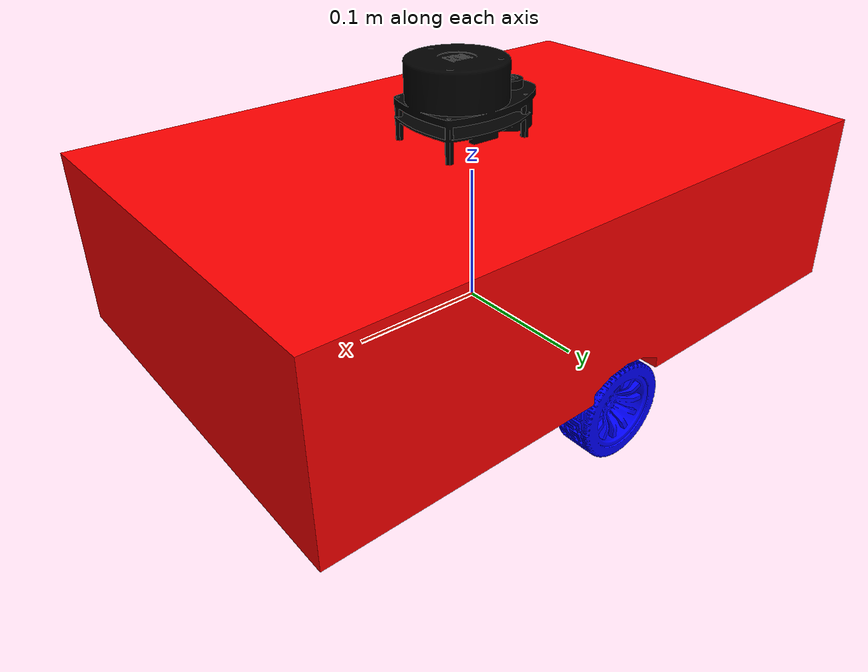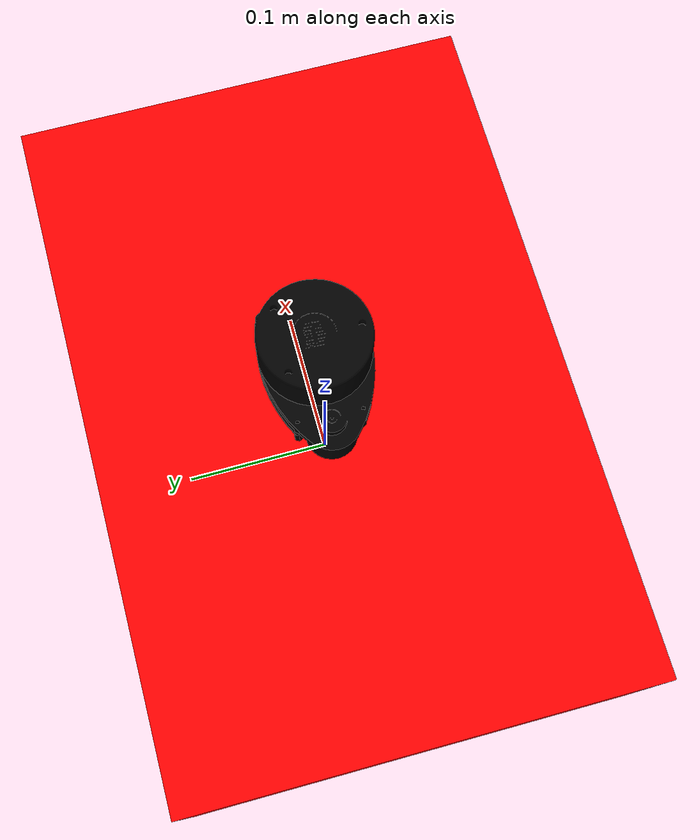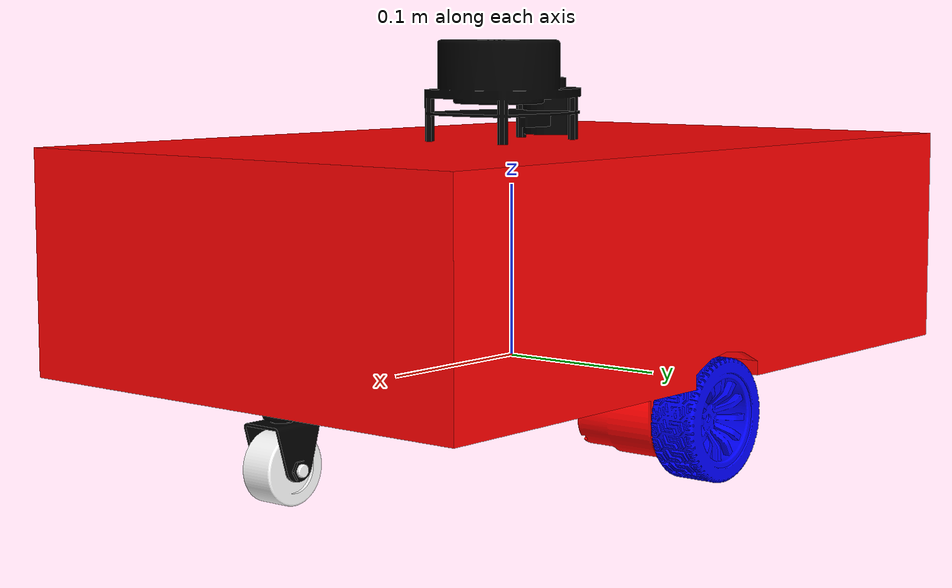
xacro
<?xml version="1.0" encoding="utf-8"?>
<robot xmlns:xacro="http://www.ros.org/wiki/xacro" >
	<material name="red">
        	<color rgba="1.0 0.0 0.0 1.0"/>
   	 </material>
   	 <material name="black">
        	<color rgba="0.0 0.0 0.0 1.0"/>
         </material>
         <material name="blue">
         	<color rgba="0.0 0.0 1.0 1.0"/>
        </material>
        <material name="white">
         	<color rgba="1.0 1.0 1.0 1.0"/>
        </material>
  <link
    name="base_link">
  </link>
  <link
    name="left_wheel">
    <inertial>
      <origin
        xyz="-8.83488102121355E-10 5.46856449012978E-11 -0.00153990809638952"
        rpy="0 0 0" />
      <mass
        value="0.0351743518689195" />
      <inertia
        ixx="1.52365643010477E-05"
        ixy="3.0840857389948E-10"
        ixz="-9.97409077694242E-14"
        iyy="1.5237343017232E-05"
        iyz="-6.11272444343794E-14"
        izz="2.57855724460667E-05" />
    </inertial>
    <visual>
      <origin
        xyz="0 0 0"
        rpy="0 0 0" />
      <geometry>
        <mesh
          filename="package://iron_mobot/meshes/left_wheel.STL" />
      </geometry>
      <material name="blue" />
    </visual>
    <collision>
      <origin
        xyz="0 0 0"
        rpy="0 0 0" />
      <geometry>
        <mesh
          filename="package://iron_mobot/meshes/left_wheel.STL" />
      </geometry>
    </collision>
  </link>
  <joint
    name="left_wheel_joint"
    type="continuous">
    <origin
      xyz="0 0.138 -0.0210000000000002"
      rpy="-1.5707963267949 0 0" />
    <parent
      link="base_link" />
    <child
      link="left_wheel" />
    <axis
      xyz="0 0 1" />
  </joint>
  <link
    name="right_wheel">
    <inertial>
      <origin
        xyz="7.70630951413276E-10 -3.32503330424672E-10 -0.00153990805361556"
        rpy="0 0 0" />
      <mass
        value="0.0351743514548104" />
      <inertia
        ixx="1.52365640491052E-05"
        ixy="3.08509166722093E-10"
        ixz="8.38334222583704E-14"
        iyy="1.52373429696304E-05"
        iyz="2.27587680472107E-14"
        izz="2.57855721584521E-05" />
    </inertial>
    <visual>
      <origin
        xyz="0 0 0"
        rpy="0 0 0" />
      <geometry>
        <mesh
          filename="package://iron_mobot/meshes/right_wheel.STL" />
      </geometry>
      <material name="blue" />
    </visual>
    <collision>
      <origin
        xyz="0 0 0"
        rpy="0 0 0" />
      <geometry>
        <mesh
          filename="package://iron_mobot/meshes/right_wheel.STL" />
      </geometry>
    </collision>
  </link>
  <joint
    name="right_wheel_joint"
    type="continuous">
    <origin
      xyz="0 -0.138 -0.0210000000000002"
      rpy="1.5707963267949 0 0" />
    <parent
      link="base_link" />
    <child
      link="right_wheel" />
    <axis
      xyz="0 0 1" />
  </joint>
  <link
    name="castor_wheel_f">
    <inertial>
      <origin
        xyz="0 -5.55111512312578E-17 -0.0161355568158763"
        rpy="0 0 0" />
      <mass
        value="0.00448472842670636" />
      <inertia
        ixx="7.32465415243615E-07"
        ixy="-1.23592415742786E-22"
        ixz="3.531673838546E-22"
        iyy="5.9050285314133E-07"
        iyz="-3.23587887691373E-21"
        izz="5.39736643368085E-07" />
    </inertial>
    <visual>
      <origin
        xyz="0 0 0"
        rpy="0 0 0" />
      <geometry>
        <mesh
          filename="package://iron_mobot/meshes/castor_wheel_f.STL" />
      </geometry>
      <material name="black" />
    </visual>
    <collision>
      <origin
        xyz="0 0 0"
        rpy="0 0 0" />
      <geometry>
        <mesh
          filename="package://iron_mobot/meshes/castor_wheel_f.STL" />
      </geometry>
    </collision>
  </link>
  <joint
    name="castor_wheel_f_joint"
    type="fixed">
    <origin
      xyz="0.1875 0 0"
      rpy="0 0 0" />
    <parent
      link="base_link" />
    <child
      link="castor_wheel_f" />
    <axis
      xyz="0 0 1" />
  </joint>
  <link
    name="castor_wheel_f1">
    <inertial>
      <origin
        xyz="0 0 -1.38777878078145E-17"
        rpy="0 0 0" />
      <mass
        value="0.0215237500041331" />
      <inertia
        ixx="2.68174134760054E-06"
        ixy="5.38159277687387E-39"
        ixz="1.07427957226757E-23"
        iyy="2.68174134760054E-06"
        iyz="3.20819031209118E-23"
        izz="3.97300328662299E-06" />
    </inertial>
    <visual>
      <origin
        xyz="0 0 0"
        rpy="0 0 0" />
      <geometry>
        <mesh
          filename="package://iron_mobot/meshes/castor_wheel_f1.STL" />
      </geometry>
       <material name="white" />
    </visual>
    <collision>
      <origin
        xyz="0 0 0"
        rpy="0 0 0" />
      <geometry>
        <mesh
          filename="package://iron_mobot/meshes/castor_wheel_f1.STL" />
      </geometry>
    </collision>
  </link>
  <joint
    name="castor_wheel_f1_jont"
    type="fixed">
    <origin
      xyz="0 0 -0.0356000000000001"
      rpy="-1.5707963267949 0 0" />
    <parent
      link="castor_wheel_f" />
    <child
      link="castor_wheel_f1" />
    <axis
      xyz="0 1 0" />
  </joint>
  <link
    name="castor_wheel_b">
    <inertial>
      <origin
        xyz="0 -5.55111512312578E-17 -0.0145355568158763"
        rpy="0 0 0" />
      <mass
        value="0.00448472842670636" />
      <inertia
        ixx="7.32465415243615E-07"
        ixy="-6.97731693449958E-23"
        ixz="4.00566546990044E-22"
        iyy="5.9050285314133E-07"
        iyz="-3.53808807516372E-21"
        izz="5.39736643368085E-07" />
    </inertial>
    <visual>
      <origin
        xyz="0 0 0"
        rpy="0 0 0" />
      <geometry>
        <mesh
          filename="package://iron_mobot/meshes/castor_wheel_b.STL" />
      </geometry>
       <material name="black" />
    </visual>
    <collision>
      <origin
        xyz="0 0 0"
        rpy="0 0 0" />
      <geometry>
        <mesh
          filename="package://iron_mobot/meshes/castor_wheel_b.STL" />
      </geometry>
    </collision>
  </link>
  <joint
    name="castor_wheel_b_joint"
    type="fixed">
    <origin
      xyz="-0.1875 0 0"
      rpy="0 0 0" />
    <parent
      link="base_link" />
    <child
      link="castor_wheel_b" />
    <axis
      xyz="0 0 1" />
  </joint>
  <link
    name="castor_wheel_b1">
    <inertial>
      <origin
        xyz="5.55111512312578E-17 2.77555756156289E-17 1.38777878078145E-17"
        rpy="0 0 0" />
      <mass
        value="0.0215237500041331" />
      <inertia
        ixx="2.68174134760053E-06"
        ixy="5.29823666801976E-39"
        ixz="1.20662847027604E-23"
        iyy="2.68174134760053E-06"
        iyz="3.20819031209118E-23"
        izz="3.97300328662299E-06" />
    </inertial>
    <visual>
      <origin
        xyz="0 0 0"
        rpy="0 0 0" />
      <geometry>
        <mesh
          filename="package://iron_mobot/meshes/castor_wheel_b1.STL" />
      </geometry>
      <material name="white" />
    </visual>
    <collision>
      <origin
        xyz="0 0 0"
        rpy="0 0 0" />
      <geometry>
        <mesh
          filename="package://iron_mobot/meshes/castor_wheel_b1.STL" />
      </geometry>
    </collision>
  </link>
  <joint
    name="castor_wheel_b1_joint"
    type="fixed">
    <origin
      xyz="0 0 -0.034"
      rpy="-1.5707963267949 0 0" />
    <parent
      link="castor_wheel_b" />
    <child
      link="castor_wheel_b1" />
    <axis
      xyz="0 1 0" />
  </joint>
  <link
    name="chassis">
    <inertial>
      <origin
        xyz="-2.74086309204336E-16 -1.38777878078145E-17 -0.0646619925057325"
        rpy="0 0 0" />
      <mass
        value="3.0292673007409" />
      <inertia
        ixx="0.02938363321042"
        ixy="-2.92144499331735E-10"
        ixz="5.82774801545193E-18"
        iyy="0.0614401847263212"
        iyz="-3.32884714211855E-19"
        izz="0.0891491492281097" />
    </inertial>
    <visual>
      <origin
        xyz="0 0 0"
        rpy="0 0 0" />
      <geometry>
        <mesh
          filename="package://iron_mobot/meshes/chassis.STL" />
      </geometry>
      <material name="red"/>
    </visual>
    <collision>
      <origin
        xyz="0 0 0"
        rpy="0 0 0" />
      <geometry>
        <mesh
          filename="package://iron_mobot/meshes/chassis.STL" />
      </geometry>
      <material name="red"/>
    </collision>
  </link>
  <joint
    name="chassis_joint"
    type="fixed">
    <origin
      xyz="0 0 0.126"
      rpy="0 0 0" />
    <parent
      link="base_link" />
    <child
      link="chassis" />
    <axis
      xyz="0 0 0" />
  </joint>
  <link
    name="lidar_link">
    <inertial>
      <origin
        xyz="-0.00675749326271478 0.000361476187292389 -0.00738187226715975"
        rpy="0 0 0" />
      <mass
        value="1.33076913637071" />
      <inertia
        ixx="0.000615403089759156"
        ixy="1.2967746229346E-05"
        ixz="-0.000157994159952965"
        iyy="0.000960212186312159"
        iyz="9.39461790111298E-06"
        izz="0.00109815200027136" />
    </inertial>
    <visual>
      <origin
        xyz="0 0 0"
        rpy="0 0 0" />
      <geometry>
        <mesh
          filename="package://iron_mobot/meshes/lidar_link.STL" />
      </geometry>
       <material name="black" />
    </visual>
    <collision>
      <origin
        xyz="0 0 0"
        rpy="0 0 0" />
      <geometry>
        <mesh
          filename="package://iron_mobot/meshes/lidar_link.STL" />
      </geometry>
    </collision>
  </link>
  <joint
    name="lidar_joint"
    type="fixed">
    <origin
      xyz="0.0151 0.0024244 0.04265"
      rpy="0 0 0" />
    <parent
      link="chassis" />
    <child
      link="lidar_link" />
    <axis
      xyz="0 0 0" />
  </joint>
</robot>
